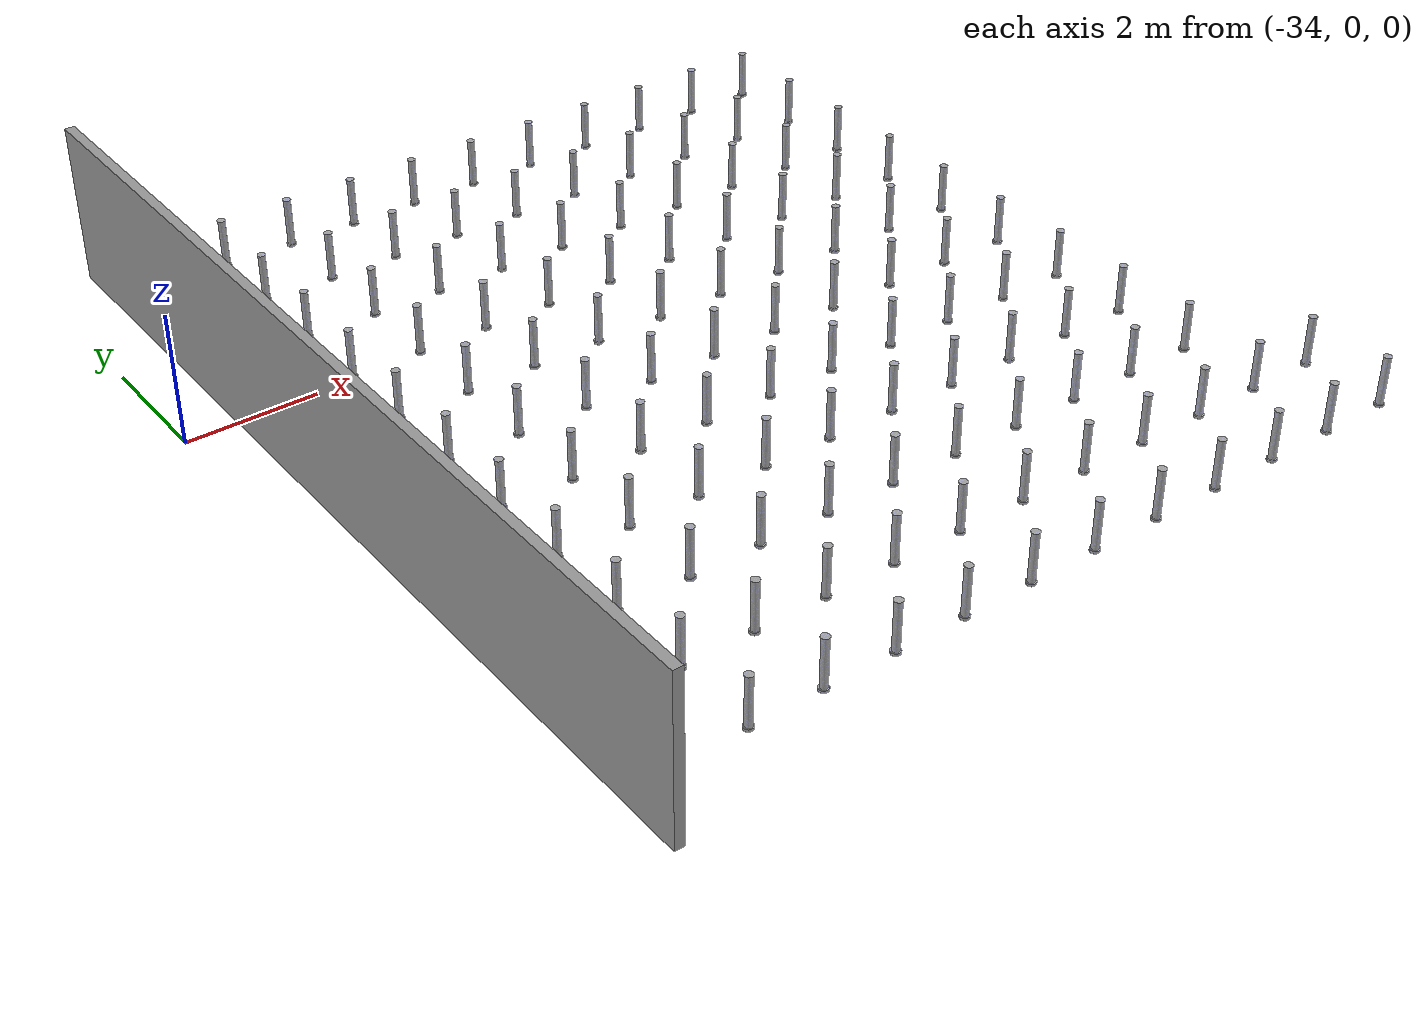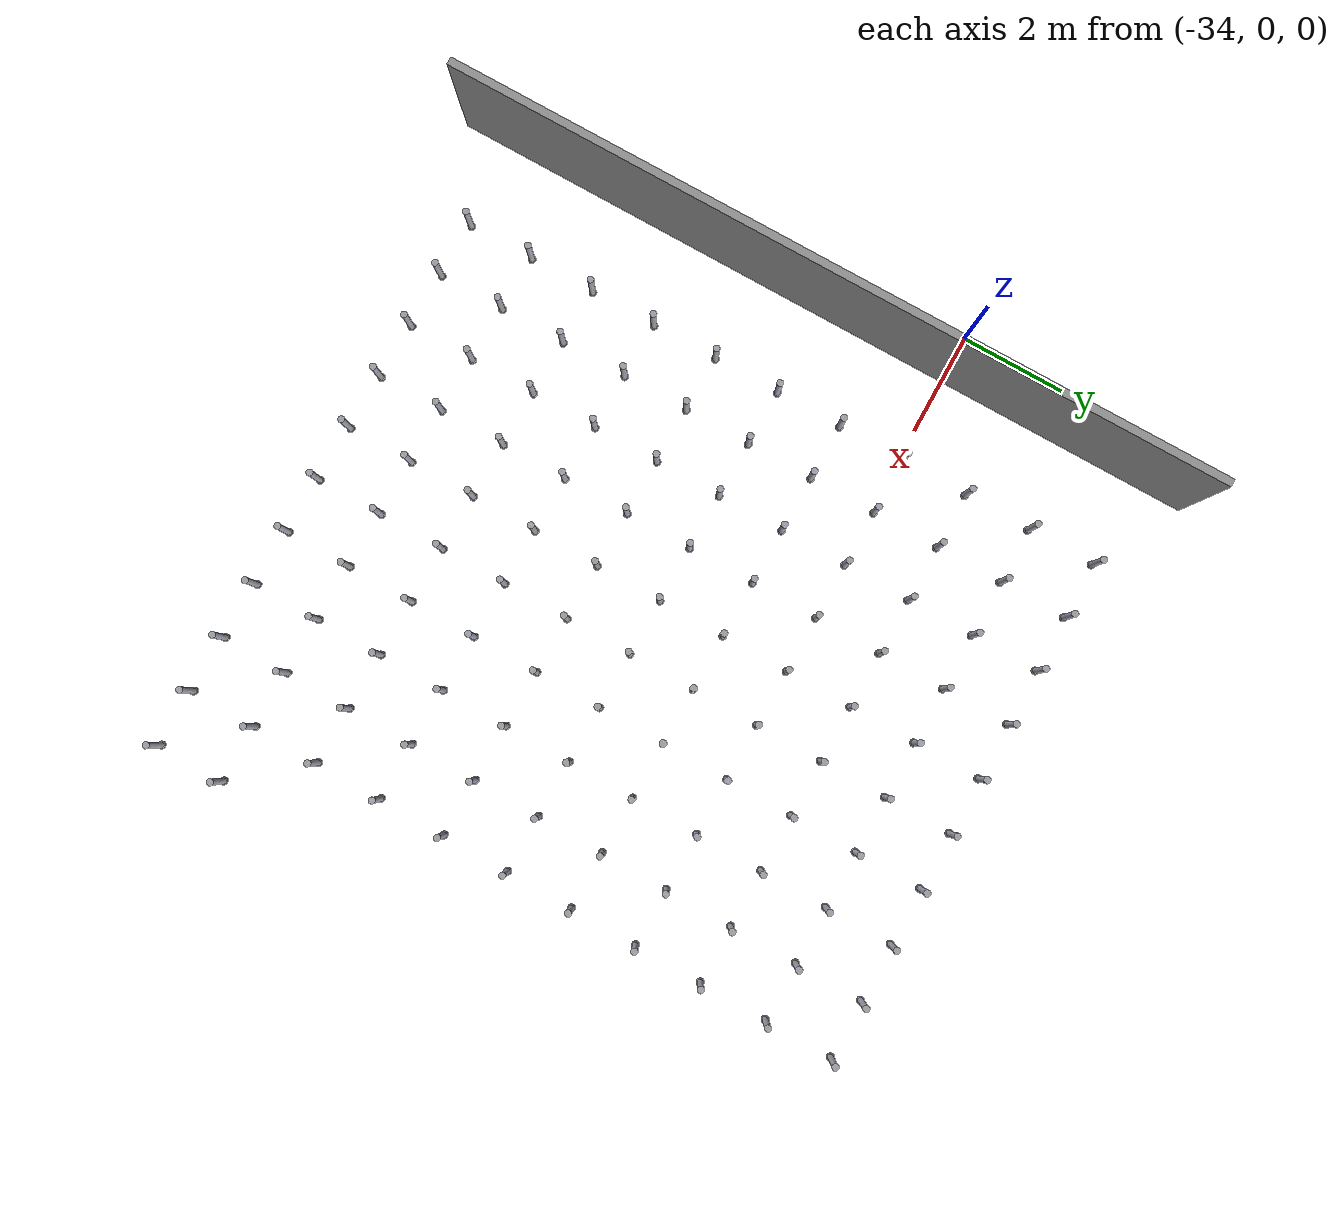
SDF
<sdf version="1.7">
 <model name="world">
  <pose>-10.459 -2.598 0 0 -0 0</pose>
  <link name="Wall_8">
   <collision name="Wall_8_Collision">
    <geometry><box><size>15 0.15 2.5</size></box></geometry>
    <pose>0 0 1.25 0 -0 0</pose>
   </collision>
   <visual name="Wall_8_Visual">
    <pose>0 0 1.25 0 -0 0</pose>
    <geometry><box><size>15 0.15 2.5</size></box></geometry>
    <material>
     <script><uri>file://media/materials/scripts/gazebo.material</uri><name>Gazebo/Grey</name></script>
     <ambient>1 1 1 1</ambient>
    </material>
    <meta><layer>0</layer></meta>
   </visual>
   <pose>-22.68 0 0 0 -0 -1.5708</pose>
  </link>
  <include><uri>model://pillar</uri><name>pillar_-21.0_-6.5</name><pose>-21.0 -6.5 0 0 0 0</pose></include>
  <include><uri>model://pillar</uri><name>pillar_-21.0_-5.2</name><pose>-21.0 -5.2 0 0 0 0</pose></include>
  <include>
   <uri>model://pillar</uri>
   <name>pillar_-21.0_-3.9000000000000004</name>
   <pose>-21.0 -3.9000000000000004 0 0 0 0</pose>
  </include>
  <include>
   <uri>model://pillar</uri>
   <name>pillar_-21.0_-2.6000000000000005</name>
   <pose>-21.0 -2.6000000000000005 0 0 0 0</pose>
  </include>
  <include>
   <uri>model://pillar</uri>
   <name>pillar_-21.0_-1.3000000000000007</name>
   <pose>-21.0 -1.3000000000000007 0 0 0 0</pose>
  </include>
  <include>
   <uri>model://pillar</uri>
   <name>pillar_-21.0_-8.881784197001252e-16</name>
   <pose>-21.0 -8.881784197001252e-16 0 0 0 0</pose>
  </include>
  <include>
   <uri>model://pillar</uri>
   <name>pillar_-21.0_1.299999999999999</name>
   <pose>-21.0 1.299999999999999 0 0 0 0</pose>
  </include>
  <include>
   <uri>model://pillar</uri>
   <name>pillar_-21.0_2.599999999999998</name>
   <pose>-21.0 2.599999999999998 0 0 0 0</pose>
  </include>
  <include>
   <uri>model://pillar</uri>
   <name>pillar_-21.0_3.8999999999999986</name>
   <pose>-21.0 3.8999999999999986 0 0 0 0</pose>
  </include>
  <include>
   <uri>model://pillar</uri>
   <name>pillar_-21.0_5.199999999999999</name>
   <pose>-21.0 5.199999999999999 0 0 0 0</pose>
  </include>
  <include>
   <uri>model://pillar</uri>
   <name>pillar_-21.0_6.499999999999998</name>
   <pose>-21.0 6.499999999999998 0 0 0 0</pose>
  </include>
  <include><uri>model://pillar</uri><name>pillar_-19.9_-6.5</name><pose>-19.9 -6.5 0 0 0 0</pose></include>
  <include><uri>model://pillar</uri><name>pillar_-19.9_-5.2</name><pose>-19.9 -5.2 0 0 0 0</pose></include>
  <include>
   <uri>model://pillar</uri>
   <name>pillar_-19.9_-3.9000000000000004</name>
   <pose>-19.9 -3.9000000000000004 0 0 0 0</pose>
  </include>
  <include>
   <uri>model://pillar</uri>
   <name>pillar_-19.9_-2.6000000000000005</name>
   <pose>-19.9 -2.6000000000000005 0 0 0 0</pose>
  </include>
  <include>
   <uri>model://pillar</uri>
   <name>pillar_-19.9_-1.3000000000000007</name>
   <pose>-19.9 -1.3000000000000007 0 0 0 0</pose>
  </include>
  <include>
   <uri>model://pillar</uri>
   <name>pillar_-19.9_-8.881784197001252e-16</name>
   <pose>-19.9 -8.881784197001252e-16 0 0 0 0</pose>
  </include>
  <include>
   <uri>model://pillar</uri>
   <name>pillar_-19.9_1.299999999999999</name>
   <pose>-19.9 1.299999999999999 0 0 0 0</pose>
  </include>
  <include>
   <uri>model://pillar</uri>
   <name>pillar_-19.9_2.599999999999998</name>
   <pose>-19.9 2.599999999999998 0 0 0 0</pose>
  </include>
  <include>
   <uri>model://pillar</uri>
   <name>pillar_-19.9_3.8999999999999986</name>
   <pose>-19.9 3.8999999999999986 0 0 0 0</pose>
  </include>
  <include>
   <uri>model://pillar</uri>
   <name>pillar_-19.9_5.199999999999999</name>
   <pose>-19.9 5.199999999999999 0 0 0 0</pose>
  </include>
  <include>
   <uri>model://pillar</uri>
   <name>pillar_-19.9_6.499999999999998</name>
   <pose>-19.9 6.499999999999998 0 0 0 0</pose>
  </include>
  <include>
   <uri>model://pillar</uri>
   <name>pillar_-18.799999999999997_-6.5</name>
   <pose>-18.799999999999997 -6.5 0 0 0 0</pose>
  </include>
  <include>
   <uri>model://pillar</uri>
   <name>pillar_-18.799999999999997_-5.2</name>
   <pose>-18.799999999999997 -5.2 0 0 0 0</pose>
  </include>
  <include>
   <uri>model://pillar</uri>
   <name>pillar_-18.799999999999997_-3.9000000000000004</name>
   <pose>-18.799999999999997 -3.9000000000000004 0 0 0 0</pose>
  </include>
  <include>
   <uri>model://pillar</uri>
   <name>pillar_-18.799999999999997_-2.6000000000000005</name>
   <pose>-18.799999999999997 -2.6000000000000005 0 0 0 0</pose>
  </include>
  <include>
   <uri>model://pillar</uri>
   <name>pillar_-18.799999999999997_-1.3000000000000007</name>
   <pose>-18.799999999999997 -1.3000000000000007 0 0 0 0</pose>
  </include>
  <include>
   <uri>model://pillar</uri>
   <name>pillar_-18.799999999999997_-8.881784197001252e-16</name>
   <pose>-18.799999999999997 -8.881784197001252e-16 0 0 0 0</pose>
  </include>
  <include>
   <uri>model://pillar</uri>
   <name>pillar_-18.799999999999997_1.299999999999999</name>
   <pose>-18.799999999999997 1.299999999999999 0 0 0 0</pose>
  </include>
  <include>
   <uri>model://pillar</uri>
   <name>pillar_-18.799999999999997_2.599999999999998</name>
   <pose>-18.799999999999997 2.599999999999998 0 0 0 0</pose>
  </include>
  <include>
   <uri>model://pillar</uri>
   <name>pillar_-18.799999999999997_3.8999999999999986</name>
   <pose>-18.799999999999997 3.8999999999999986 0 0 0 0</pose>
  </include>
  <include>
   <uri>model://pillar</uri>
   <name>pillar_-18.799999999999997_5.199999999999999</name>
   <pose>-18.799999999999997 5.199999999999999 0 0 0 0</pose>
  </include>
  <include>
   <uri>model://pillar</uri>
   <name>pillar_-18.799999999999997_6.499999999999998</name>
   <pose>-18.799999999999997 6.499999999999998 0 0 0 0</pose>
  </include>
  <include>
   <uri>model://pillar</uri>
   <name>pillar_-17.699999999999996_-6.5</name>
   <pose>-17.699999999999996 -6.5 0 0 0 0</pose>
  </include>
  <include>
   <uri>model://pillar</uri>
   <name>pillar_-17.699999999999996_-5.2</name>
   <pose>-17.699999999999996 -5.2 0 0 0 0</pose>
  </include>
  <include>
   <uri>model://pillar</uri>
   <name>pillar_-17.699999999999996_-3.9000000000000004</name>
   <pose>-17.699999999999996 -3.9000000000000004 0 0 0 0</pose>
  </include>
  <include>
   <uri>model://pillar</uri>
   <name>pillar_-17.699999999999996_-2.6000000000000005</name>
   <pose>-17.699999999999996 -2.6000000000000005 0 0 0 0</pose>
  </include>
  <include>
   <uri>model://pillar</uri>
   <name>pillar_-17.699999999999996_-1.3000000000000007</name>
   <pose>-17.699999999999996 -1.3000000000000007 0 0 0 0</pose>
  </include>
  <include>
   <uri>model://pillar</uri>
   <name>pillar_-17.699999999999996_-8.881784197001252e-16</name>
   <pose>-17.699999999999996 -8.881784197001252e-16 0 0 0 0</pose>
  </include>
  <include>
   <uri>model://pillar</uri>
   <name>pillar_-17.699999999999996_1.299999999999999</name>
   <pose>-17.699999999999996 1.299999999999999 0 0 0 0</pose>
  </include>
  <include>
   <uri>model://pillar</uri>
   <name>pillar_-17.699999999999996_2.599999999999998</name>
   <pose>-17.699999999999996 2.599999999999998 0 0 0 0</pose>
  </include>
  <include>
   <uri>model://pillar</uri>
   <name>pillar_-17.699999999999996_3.8999999999999986</name>
   <pose>-17.699999999999996 3.8999999999999986 0 0 0 0</pose>
  </include>
  <include>
   <uri>model://pillar</uri>
   <name>pillar_-17.699999999999996_5.199999999999999</name>
   <pose>-17.699999999999996 5.199999999999999 0 0 0 0</pose>
  </include>
  <include>
   <uri>model://pillar</uri>
   <name>pillar_-17.699999999999996_6.499999999999998</name>
   <pose>-17.699999999999996 6.499999999999998 0 0 0 0</pose>
  </include>
  <include>
   <uri>model://pillar</uri>
   <name>pillar_-16.599999999999994_-6.5</name>
   <pose>-16.599999999999994 -6.5 0 0 0 0</pose>
  </include>
  <include>
   <uri>model://pillar</uri>
   <name>pillar_-16.599999999999994_-5.2</name>
   <pose>-16.599999999999994 -5.2 0 0 0 0</pose>
  </include>
  <include>
   <uri>model://pillar</uri>
   <name>pillar_-16.599999999999994_-3.9000000000000004</name>
   <pose>-16.599999999999994 -3.9000000000000004 0 0 0 0</pose>
  </include>
  <include>
   <uri>model://pillar</uri>
   <name>pillar_-16.599999999999994_-2.6000000000000005</name>
   <pose>-16.599999999999994 -2.6000000000000005 0 0 0 0</pose>
  </include>
  <include>
   <uri>model://pillar</uri>
   <name>pillar_-16.599999999999994_-1.3000000000000007</name>
   <pose>-16.599999999999994 -1.3000000000000007 0 0 0 0</pose>
  </include>
  <include>
   <uri>model://pillar</uri>
   <name>pillar_-16.599999999999994_-8.881784197001252e-16</name>
   <pose>-16.599999999999994 -8.881784197001252e-16 0 0 0 0</pose>
  </include>
  <include>
   <uri>model://pillar</uri>
   <name>pillar_-16.599999999999994_1.299999999999999</name>
   <pose>-16.599999999999994 1.299999999999999 0 0 0 0</pose>
  </include>
  <include>
   <uri>model://pillar</uri>
   <name>pillar_-16.599999999999994_2.599999999999998</name>
   <pose>-16.599999999999994 2.599999999999998 0 0 0 0</pose>
  </include>
  <include>
   <uri>model://pillar</uri>
   <name>pillar_-16.599999999999994_3.8999999999999986</name>
   <pose>-16.599999999999994 3.8999999999999986 0 0 0 0</pose>
  </include>
  <include>
   <uri>model://pillar</uri>
   <name>pillar_-16.599999999999994_5.199999999999999</name>
   <pose>-16.599999999999994 5.199999999999999 0 0 0 0</pose>
  </include>
  <include>
   <uri>model://pillar</uri>
   <name>pillar_-16.599999999999994_6.499999999999998</name>
   <pose>-16.599999999999994 6.499999999999998 0 0 0 0</pose>
  </include>
  <include>
   <uri>model://pillar</uri>
   <name>pillar_-15.499999999999993_-6.5</name>
   <pose>-15.499999999999993 -6.5 0 0 0 0</pose>
  </include>
  <include>
   <uri>model://pillar</uri>
   <name>pillar_-15.499999999999993_-5.2</name>
   <pose>-15.499999999999993 -5.2 0 0 0 0</pose>
  </include>
  <include>
   <uri>model://pillar</uri>
   <name>pillar_-15.499999999999993_-3.9000000000000004</name>
   <pose>-15.499999999999993 -3.9000000000000004 0 0 0 0</pose>
  </include>
  <include>
   <uri>model://pillar</uri>
   <name>pillar_-15.499999999999993_-2.6000000000000005</name>
   <pose>-15.499999999999993 -2.6000000000000005 0 0 0 0</pose>
  </include>
  <include>
   <uri>model://pillar</uri>
   <name>pillar_-15.499999999999993_-1.3000000000000007</name>
   <pose>-15.499999999999993 -1.3000000000000007 0 0 0 0</pose>
  </include>
  <include>
   <uri>model://pillar</uri>
   <name>pillar_-15.499999999999993_-8.881784197001252e-16</name>
   <pose>-15.499999999999993 -8.881784197001252e-16 0 0 0 0</pose>
  </include>
  <include>
   <uri>model://pillar</uri>
   <name>pillar_-15.499999999999993_1.299999999999999</name>
   <pose>-15.499999999999993 1.299999999999999 0 0 0 0</pose>
  </include>
  <include>
   <uri>model://pillar</uri>
   <name>pillar_-15.499999999999993_2.599999999999998</name>
   <pose>-15.499999999999993 2.599999999999998 0 0 0 0</pose>
  </include>
  <include>
   <uri>model://pillar</uri>
   <name>pillar_-15.499999999999993_3.8999999999999986</name>
   <pose>-15.499999999999993 3.8999999999999986 0 0 0 0</pose>
  </include>
  <include>
   <uri>model://pillar</uri>
   <name>pillar_-15.499999999999993_5.199999999999999</name>
   <pose>-15.499999999999993 5.199999999999999 0 0 0 0</pose>
  </include>
  <include>
   <uri>model://pillar</uri>
   <name>pillar_-15.499999999999993_6.499999999999998</name>
   <pose>-15.499999999999993 6.499999999999998 0 0 0 0</pose>
  </include>
  <include>
   <uri>model://pillar</uri>
   <name>pillar_-14.399999999999991_-6.5</name>
   <pose>-14.399999999999991 -6.5 0 0 0 0</pose>
  </include>
  <include>
   <uri>model://pillar</uri>
   <name>pillar_-14.399999999999991_-5.2</name>
   <pose>-14.399999999999991 -5.2 0 0 0 0</pose>
  </include>
  <include>
   <uri>model://pillar</uri>
   <name>pillar_-14.399999999999991_-3.9000000000000004</name>
   <pose>-14.399999999999991 -3.9000000000000004 0 0 0 0</pose>
  </include>
  <include>
   <uri>model://pillar</uri>
   <name>pillar_-14.399999999999991_-2.6000000000000005</name>
   <pose>-14.399999999999991 -2.6000000000000005 0 0 0 0</pose>
  </include>
  <include>
   <uri>model://pillar</uri>
   <name>pillar_-14.399999999999991_-1.3000000000000007</name>
   <pose>-14.399999999999991 -1.3000000000000007 0 0 0 0</pose>
  </include>
  <include>
   <uri>model://pillar</uri>
   <name>pillar_-14.399999999999991_-8.881784197001252e-16</name>
   <pose>-14.399999999999991 -8.881784197001252e-16 0 0 0 0</pose>
  </include>
  <include>
   <uri>model://pillar</uri>
   <name>pillar_-14.399999999999991_1.299999999999999</name>
   <pose>-14.399999999999991 1.299999999999999 0 0 0 0</pose>
  </include>
  <include>
   <uri>model://pillar</uri>
   <name>pillar_-14.399999999999991_2.599999999999998</name>
   <pose>-14.399999999999991 2.599999999999998 0 0 0 0</pose>
  </include>
  <include>
   <uri>model://pillar</uri>
   <name>pillar_-14.399999999999991_3.8999999999999986</name>
   <pose>-14.399999999999991 3.8999999999999986 0 0 0 0</pose>
  </include>
  <include>
   <uri>model://pillar</uri>
   <name>pillar_-14.399999999999991_5.199999999999999</name>
   <pose>-14.399999999999991 5.199999999999999 0 0 0 0</pose>
  </include>
  <include>
   <uri>model://pillar</uri>
   <name>pillar_-14.399999999999991_6.499999999999998</name>
   <pose>-14.399999999999991 6.499999999999998 0 0 0 0</pose>
  </include>
  <include>
   <uri>model://pillar</uri>
   <name>pillar_-13.29999999999999_-6.5</name>
   <pose>-13.29999999999999 -6.5 0 0 0 0</pose>
  </include>
  <include>
   <uri>model://pillar</uri>
   <name>pillar_-13.29999999999999_-5.2</name>
   <pose>-13.29999999999999 -5.2 0 0 0 0</pose>
  </include>
  <include>
   <uri>model://pillar</uri>
   <name>pillar_-13.29999999999999_-3.9000000000000004</name>
   <pose>-13.29999999999999 -3.9000000000000004 0 0 0 0</pose>
  </include>
  <include>
   <uri>model://pillar</uri>
   <name>pillar_-13.29999999999999_-2.6000000000000005</name>
   <pose>-13.29999999999999 -2.6000000000000005 0 0 0 0</pose>
  </include>
  <include>
   <uri>model://pillar</uri>
   <name>pillar_-13.29999999999999_-1.3000000000000007</name>
   <pose>-13.29999999999999 -1.3000000000000007 0 0 0 0</pose>
  </include>
  <include>
   <uri>model://pillar</uri>
   <name>pillar_-13.29999999999999_-8.881784197001252e-16</name>
   <pose>-13.29999999999999 -8.881784197001252e-16 0 0 0 0</pose>
  </include>
  <include>
   <uri>model://pillar</uri>
   <name>pillar_-13.29999999999999_1.299999999999999</name>
   <pose>-13.29999999999999 1.299999999999999 0 0 0 0</pose>
  </include>
  <include>
   <uri>model://pillar</uri>
   <name>pillar_-13.29999999999999_2.599999999999998</name>
   <pose>-13.29999999999999 2.599999999999998 0 0 0 0</pose>
  </include>
  <include>
   <uri>model://pillar</uri>
   <name>pillar_-13.29999999999999_3.8999999999999986</name>
   <pose>-13.29999999999999 3.8999999999999986 0 0 0 0</pose>
  </include>
  <include>
   <uri>model://pillar</uri>
   <name>pillar_-13.29999999999999_5.199999999999999</name>
   <pose>-13.29999999999999 5.199999999999999 0 0 0 0</pose>
  </include>
  <include>
   <uri>model://pillar</uri>
   <name>pillar_-13.29999999999999_6.499999999999998</name>
   <pose>-13.29999999999999 6.499999999999998 0 0 0 0</pose>
  </include>
  <include>
   <uri>model://pillar</uri>
   <name>pillar_-12.199999999999989_-6.5</name>
   <pose>-12.199999999999989 -6.5 0 0 0 0</pose>
  </include>
  <include>
   <uri>model://pillar</uri>
   <name>pillar_-12.199999999999989_-5.2</name>
   <pose>-12.199999999999989 -5.2 0 0 0 0</pose>
  </include>
  <include>
   <uri>model://pillar</uri>
   <name>pillar_-12.199999999999989_-3.9000000000000004</name>
   <pose>-12.199999999999989 -3.9000000000000004 0 0 0 0</pose>
  </include>
  <include>
   <uri>model://pillar</uri>
   <name>pillar_-12.199999999999989_-2.6000000000000005</name>
   <pose>-12.199999999999989 -2.6000000000000005 0 0 0 0</pose>
  </include>
  <include>
   <uri>model://pillar</uri>
   <name>pillar_-12.199999999999989_-1.3000000000000007</name>
   <pose>-12.199999999999989 -1.3000000000000007 0 0 0 0</pose>
  </include>
  <include>
   <uri>model://pillar</uri>
   <name>pillar_-12.199999999999989_-8.881784197001252e-16</name>
   <pose>-12.199999999999989 -8.881784197001252e-16 0 0 0 0</pose>
  </include>
  <include>
   <uri>model://pillar</uri>
   <name>pillar_-12.199999999999989_1.299999999999999</name>
   <pose>-12.199999999999989 1.299999999999999 0 0 0 0</pose>
  </include>
  <include>
   <uri>model://pillar</uri>
   <name>pillar_-12.199999999999989_2.599999999999998</name>
   <pose>-12.199999999999989 2.599999999999998 0 0 0 0</pose>
  </include>
  <include>
   <uri>model://pillar</uri>
   <name>pillar_-12.199999999999989_3.8999999999999986</name>
   <pose>-12.199999999999989 3.8999999999999986 0 0 0 0</pose>
  </include>
  <include>
   <uri>model://pillar</uri>
   <name>pillar_-12.199999999999989_5.199999999999999</name>
   <pose>-12.199999999999989 5.199999999999999 0 0 0 0</pose>
  </include>
  <include>
   <uri>model://pillar</uri>
   <name>pillar_-12.199999999999989_6.499999999999998</name>
   <pose>-12.199999999999989 6.499999999999998 0 0 0 0</pose>
  </include>
  <include>
   <uri>model://pillar</uri>
   <name>pillar_-11.099999999999987_-6.5</name>
   <pose>-11.099999999999987 -6.5 0 0 0 0</pose>
  </include>
  <include>
   <uri>model://pillar</uri>
   <name>pillar_-11.099999999999987_-5.2</name>
   <pose>-11.099999999999987 -5.2 0 0 0 0</pose>
  </include>
  <include>
   <uri>model://pillar</uri>
   <name>pillar_-11.099999999999987_-3.9000000000000004</name>
   <pose>-11.099999999999987 -3.9000000000000004 0 0 0 0</pose>
  </include>
  <include>
   <uri>model://pillar</uri>
   <name>pillar_-11.099999999999987_-2.6000000000000005</name>
   <pose>-11.099999999999987 -2.6000000000000005 0 0 0 0</pose>
  </include>
  <include>
   <uri>model://pillar</uri>
   <name>pillar_-11.099999999999987_-1.3000000000000007</name>
   <pose>-11.099999999999987 -1.3000000000000007 0 0 0 0</pose>
  </include>
  <include>
   <uri>model://pillar</uri>
   <name>pillar_-11.099999999999987_-8.881784197001252e-16</name>
   <pose>-11.099999999999987 -8.881784197001252e-16 0 0 0 0</pose>
  </include>
  <include>
   <uri>model://pillar</uri>
   <name>pillar_-11.099999999999987_1.299999999999999</name>
   <pose>-11.099999999999987 1.299999999999999 0 0 0 0</pose>
  </include>
  <include>
   <uri>model://pillar</uri>
   <name>pillar_-11.099999999999987_2.599999999999998</name>
   <pose>-11.099999999999987 2.599999999999998 0 0 0 0</pose>
  </include>
  <include>
   <uri>model://pillar</uri>
   <name>pillar_-11.099999999999987_3.8999999999999986</name>
   <pose>-11.099999999999987 3.8999999999999986 0 0 0 0</pose>
  </include>
  <include>
   <uri>model://pillar</uri>
   <name>pillar_-11.099999999999987_5.199999999999999</name>
   <pose>-11.099999999999987 5.199999999999999 0 0 0 0</pose>
  </include>
  <include>
   <uri>model://pillar</uri>
   <name>pillar_-11.099999999999987_6.499999999999998</name>
   <pose>-11.099999999999987 6.499999999999998 0 0 0 0</pose>
  </include>
  <include>
   <uri>model://pillar</uri>
   <name>pillar_-9.999999999999986_-6.5</name>
   <pose>-9.999999999999986 -6.5 0 0 0 0</pose>
  </include>
  <include>
   <uri>model://pillar</uri>
   <name>pillar_-9.999999999999986_-5.2</name>
   <pose>-9.999999999999986 -5.2 0 0 0 0</pose>
  </include>
  <static>1</static>
 </model>
</sdf>
